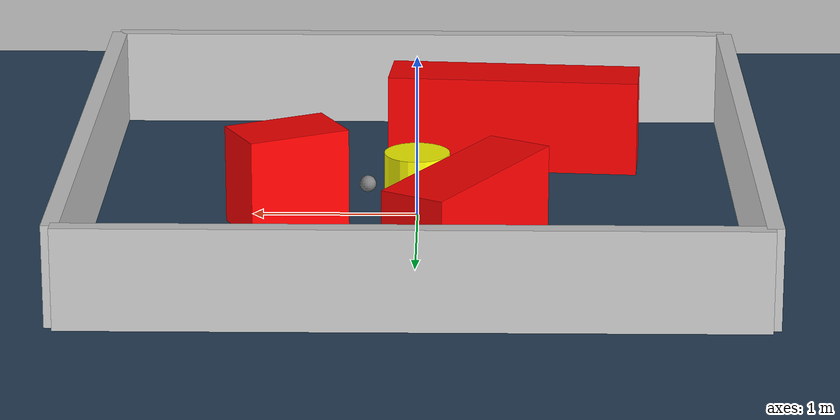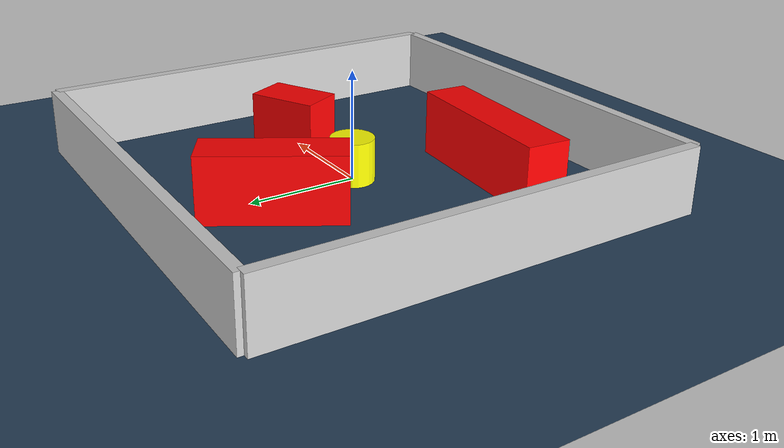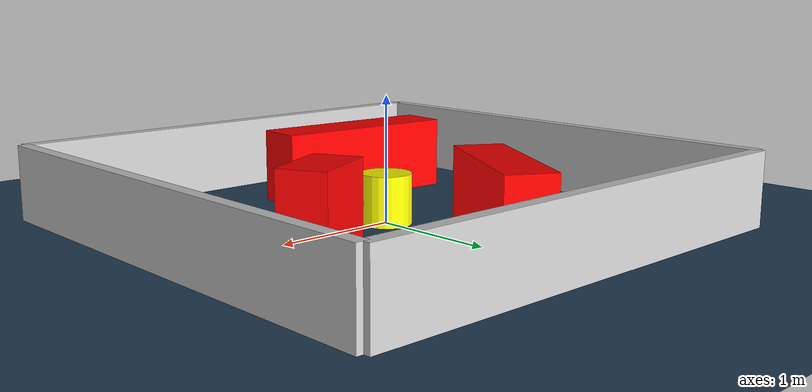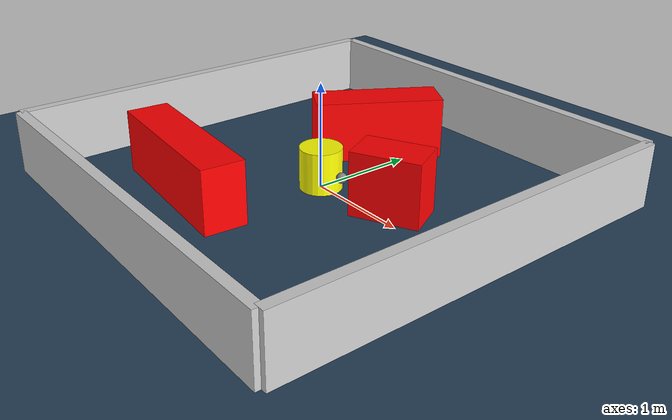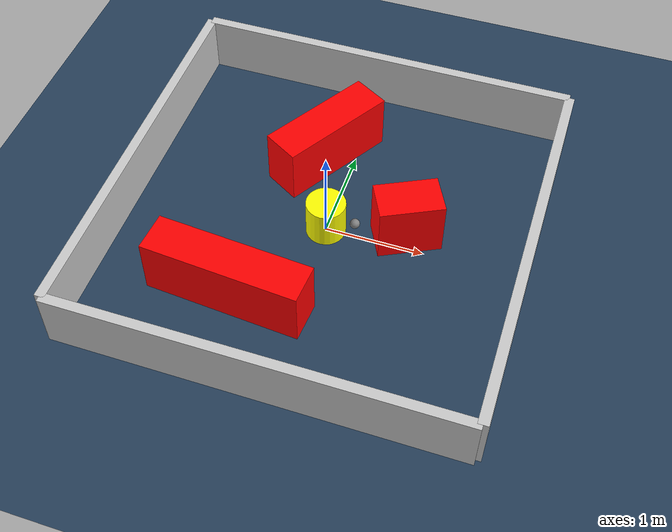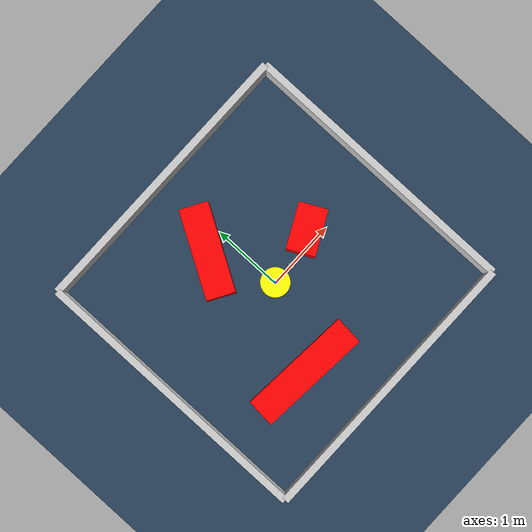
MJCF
<?xml version="1.0" ?>
<mujoco model="generated_environment">
  <option timestep="0.01" integrator="RK4" cone="elliptic"/>
  <default>
    <geom density="1"/>
  </default>
  <asset>
    <texture builtin="gradient" height="3072" rgb1="0.3 0.5 0.7" rgb2="0 0 0" type="skybox" width="512"/>
    <texture builtin="checker" height="300" mark="edge" markrgb="0.8 0.8 0.8" name="groundplane" rgb1="0.2 0.3 0.4" rgb2="0.1 0.2 0.3" type="2d" width="300"/>
    <material name="groundplane" reflectance="0.2" texrepeat="5 5" texture="groundplane" texuniform="true"/>
    <material name="robot" rgba="0.0 1.0 0.0 1"/>
  </asset>
  <worldbody>
    <light dir="0 0 -1" directional="true" pos="0 0 1.5"/>
    <geom condim="4" friction="1.0 0.005 0.001" material="groundplane" name="floor" size="0 0 0.05" type="plane"/>
    <body name="walls">
      <geom name="wall_1" condim="4" pos="-2.0 0.0 0.3" rgba="0.800000011920929 0.800000011920929 0.800000011920929 1.0" size="0.05 2.0 0.3" type="box"/>
      <geom name="wall_2" condim="4" pos="2.0 0.0 0.3" rgba="0.800000011920929 0.800000011920929 0.800000011920929 1.0" size="0.05 2.0 0.3" type="box"/>
      <geom name="wall_3" condim="4" pos="0.0 -2.0 0.3" rgba="0.800000011920929 0.800000011920929 0.800000011920929 1.0" size="2.0 0.05 0.3" type="box"/>
      <geom name="wall_4" condim="4" pos="0.0 2.0 0.3" rgba="0.800000011920929 0.800000011920929 0.800000011920929 1.0" size="2.0 0.05 0.3" type="box"/>
    </body>
    <body name="robot">
      <joint name="joint_x" type="slide" pos="0 0 0" axis="1 0 0"/>
      <joint name="joint_y" type="slide" pos="0 0 0" axis="0 1 0"/>
      <geom name="robot" type="sphere" pos="0.3 0.0 0.2" size="0.05" mass="5." friction="1.0 0.005 0.0001" condim="4" rgba="0.5 0.5 0.5 1.0"/>
      <site name="sensor_ball"/>
    </body>
    <body name="obstacle_movable_1">
      <geom name="obstacle_movable_1" condim="4" pos="0.0 0.0 0.2" euler="0 0 0.0" friction="1.0 0.005 0.001" rgba="1.0 1.0 0.0 1.0" size="0.2 0.2 0.0" type="cylinder" mass="0.1"/>
      <joint type="free"/>
    </body>
    <body name="obstacle_2_static">
      <geom name="obstacle_2_static" condim="4" pos="-0.3005686935228693 0.9246034066333271 0.3" euler="0 0 59.399908010213984" friction="1.0 0.005 0.001" rgba="1 0 0 1" size="0.6179370228102916 0.2 0.3" type="box"/>
    </body>
    <body name="obstacle_3_static">
      <geom name="obstacle_3_static" condim="4" pos="0.7845119169651402 0.15757834510608126 0.3" euler="0 0 206.73678398179618" friction="1.0 0.005 0.001" rgba="1 0 0 1" size="0.31971236447467016 0.2 0.3" type="box"/>
    </body>
    <body name="obstacle_4_static">
      <geom name="obstacle_4_static" condim="4" pos="-0.603815436606755 -1.0687504062009416 0.3" euler="0 0 355.5107801107992" friction="1.0 0.005 0.001" rgba="1 0 0 1" size="0.7889706219530415 0.2 0.3" type="box"/>
    </body>
  </worldbody>
  <actuator>
    <motor name="actuator_x" joint="joint_x" gear="1" ctrlrange="-1 1"/>
    <motor name="actuator_y" joint="joint_y" gear="1" ctrlrange="-1 1"/>
  </actuator>
</mujoco>
